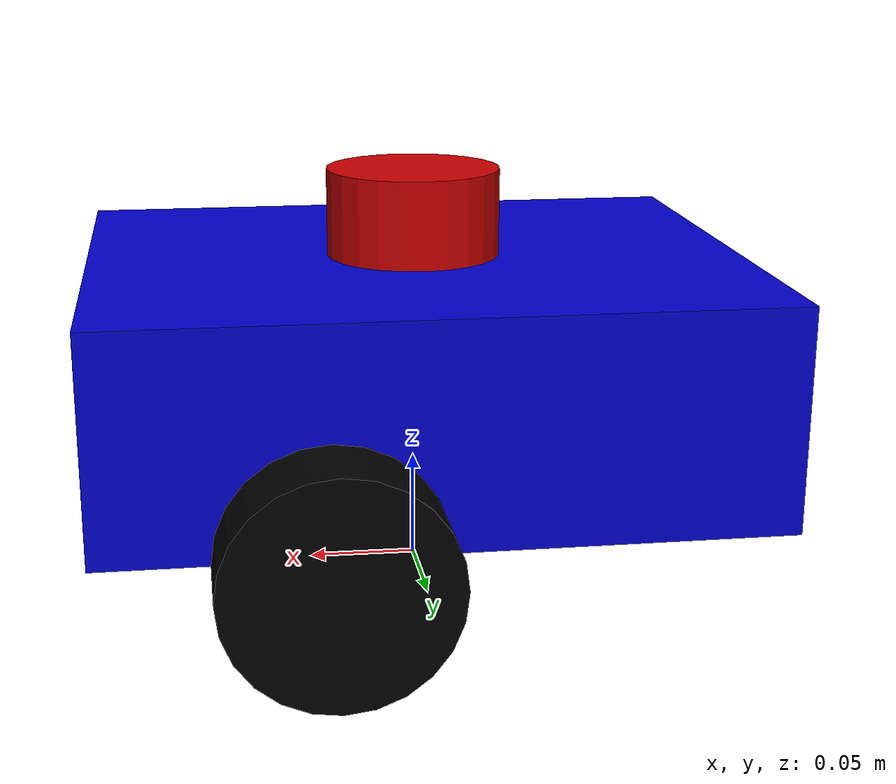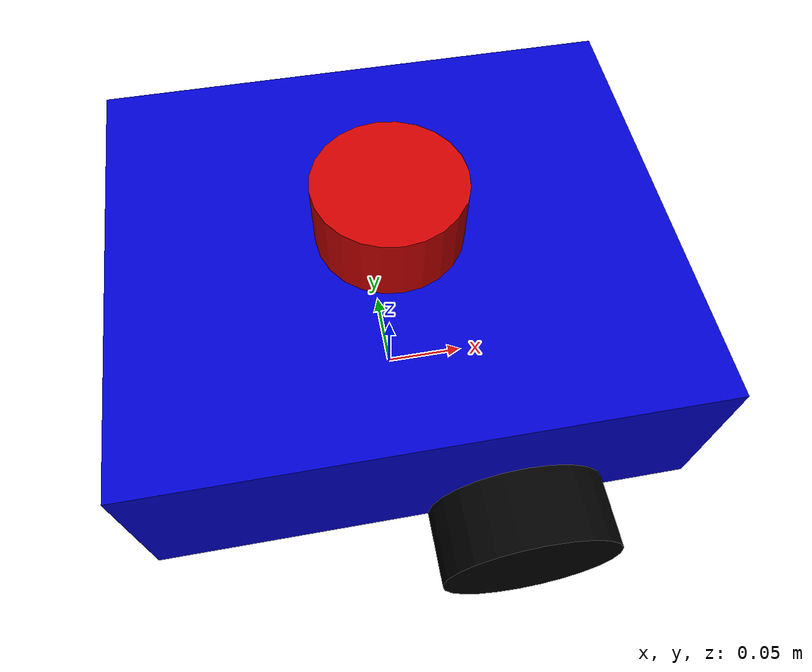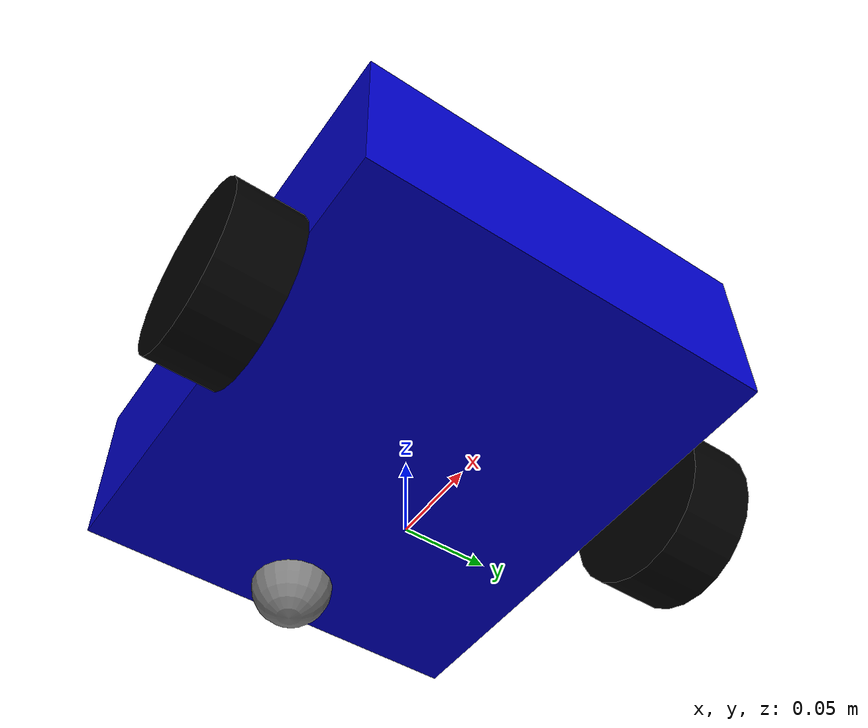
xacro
<?xml version="1.0"?>
<robot name="amr_y" xmlns:xacro="http://ros.org/wiki/xacro">

  <!-- PROPRIÉTÉS — constantes réutilisables dans tout le fichier   -->
  <!-- xacro:property = variable réutilisable partout dans le fichier -->
  <!-- Avantage : changer une valeur ici = change partout            -->
  <!-- Syntaxe : ${nom_variable} pour utiliser la valeur             -->

  <xacro:property name="chassis_length" value="0.30"/>
  <xacro:property name="chassis_width"  value="0.25"/>
  <xacro:property name="chassis_height" value="0.10"/>
  <xacro:property name="chassis_mass"   value="1.5"/>

  <xacro:property name="wheel_radius"   value="0.05"/>
  <xacro:property name="wheel_width"    value="0.04"/>
  <xacro:property name="wheel_mass"     value="0.1"/>
  <xacro:property name="wheel_offset_x" value="0.05"/>
  <xacro:property name="wheel_offset_y" value="0.145"/>
  <xacro:property name="wheel_offset_z" value="0.0"/>

  <xacro:property name="caster_radius"  value="0.025"/>
  <xacro:property name="lidar_radius"   value="0.04"/>
  <xacro:property name="lidar_height"   value="0.04"/>

  <!-- MATÉRIAUX — couleurs pour la visualisation dans RViz         -->
  <!-- rgba = Red Green Blue Alpha — valeurs de 0 à 1               -->

  <material name="blue">
    <color rgba="0.0 0.0 0.8 1.0"/>
  </material>

  <material name="black">
    <color rgba="0.0 0.0 0.0 1.0"/>
  </material>

  <material name="white">
    <color rgba="1.0 1.0 1.0 1.0"/>
  </material>

  <material name="red">
    <color rgba="0.8 0.0 0.0 1.0"/>
  </material>

  <material name="grey">
    <color rgba="0.5 0.5 0.5 1.0"/>
  </material>

  <!-- BASE FOOTPRINT — lien virtuel au niveau du sol               -->
  <!-- Convention ROS2 : tous les robots doivent avoir ce lien      -->
  <!-- Il représente la projection du robot sur le sol              -->
  <!-- Il n'a pas de géométrie physique                             -->

  <link name="base_footprint"/>

  <!-- joint type="fixed" : les deux liens ne bougent pas l'un par rapport à l'autre -->
  <joint name="base_joint" type="fixed">
    <parent link="base_footprint"/>
    <child link="base_link"/>
    <!-- On lève le robot de la hauteur du rayon des roues -->
    <origin xyz="0 0 ${wheel_radius}" rpy="0 0 0"/>
  </joint>

  <!-- BASE LINK — corps principal du robot                         -->
  <!-- Un link contient 3 éléments :                               -->
  <!--   1. visual    : ce qu'on voit dans RViz                    -->
  <!--   2. collision : forme pour la physique Gazebo              -->
  <!--   3. inertial  : masse et inertie pour la simulation        -->

  <link name="base_link">

    <!-- VISUAL : représentation visuelle dans RViz/Gazebo -->
    <visual>
      <!-- On lève de chassis_height/2 pour que le bas soit au niveau du joint -->
      <origin xyz="0 0 ${chassis_height/2}" rpy="0 0 0"/>
      <geometry>
        <!-- box : boîte rectangulaire — longueur largeur hauteur -->
        <box size="${chassis_length} ${chassis_width} ${chassis_height}"/>
      </geometry>
      <material name="blue"/>
    </visual>

    <!-- COLLISION : forme utilisée par Gazebo pour détecter les collisions -->
    <collision>
      <origin xyz="0 0 ${chassis_height/2}" rpy="0 0 0"/>
      <geometry>
        <box size="${chassis_length} ${chassis_width} ${chassis_height}"/>
      </geometry>
    </collision>

    <!-- INERTIAL : propriétés physiques pour la simulation Gazebo -->
    <!-- Formules pour une boîte solide homogène                   -->
    <inertial>
      <origin xyz="0 0 ${chassis_height/2}" rpy="0 0 0"/>
      <mass value="${chassis_mass}"/>
      <inertia
        ixx="${chassis_mass/12*(chassis_width*chassis_width + chassis_height*chassis_height)}"
        ixy="0"
        ixz="0"
        iyy="${chassis_mass/12*(chassis_length*chassis_length + chassis_height*chassis_height)}"
        iyz="0"
        izz="${chassis_mass/12*(chassis_length*chassis_length + chassis_width*chassis_width)}"/>
    </inertial>
  </link>

  <!-- MACRO ROUE — éviter de dupliquer le code pour chaque roue   -->
  <!-- params : liste des paramètres de la macro                   -->

  <xacro:macro name="wheel" params="name x y">

    <!-- type="continuous" : peut tourner sans limite (360° et plus) -->
    <joint name="${name}_joint" type="continuous">
      <parent link="base_link"/>
      <child link="${name}_link"/>
      <!-- rpy="-1.5708 0 0" : rotation de -90° autour de X        -->
      <!-- Le cylindre URDF est vertical par défaut                 -->
      <!-- On le couche pour qu'il soit horizontal comme une roue   -->
      <origin xyz="${x} ${y} ${wheel_offset_z}" rpy="-1.5708 0 0"/>
      <!-- axis : axe de rotation — Z car on a tourné le cylindre   -->
      <axis xyz="0 0 1"/>
    </joint>

    <link name="${name}_link">

      <visual>
        <origin xyz="0 0 0" rpy="0 0 0"/>
        <geometry>
          <!-- cylinder : rayon et longueur -->
          <cylinder radius="${wheel_radius}" length="${wheel_width}"/>
        </geometry>
        <material name="black"/>
      </visual>

      <collision>
        <origin xyz="0 0 0" rpy="0 0 0"/>
        <geometry>
          <cylinder radius="${wheel_radius}" length="${wheel_width}"/>
        </geometry>
      </collision>

      <!-- Formules pour un cylindre solide                         -->
      <!-- izz cylindre = m*r²/2 — inertie autour de l'axe principal -->
      <inertial>
        <origin xyz="0 0 0" rpy="0 0 0"/>
        <mass value="${wheel_mass}"/>
        <inertia
          ixx="${wheel_mass/12*(3*wheel_radius*wheel_radius + wheel_width*wheel_width)}"
          ixy="0"
          ixz="0"
          iyy="${wheel_mass/12*(3*wheel_radius*wheel_radius + wheel_width*wheel_width)}"
          iyz="0"
          izz="${wheel_mass/2*wheel_radius*wheel_radius}"/>
      </inertial>
    </link>

  </xacro:macro>

  <!-- Instancier la macro pour créer les deux roues -->
  <!-- wheel_left  : y positif = côté gauche         -->
  <!-- wheel_right : y négatif = côté droit          -->
  <xacro:wheel name="wheel_left"  x="${wheel_offset_x}" y="${wheel_offset_y}"/>
  <xacro:wheel name="wheel_right" x="${wheel_offset_x}" y="${-wheel_offset_y}"/>

  <!-- ROUE FOLLE (CASTER WHEEL) — stabilise le robot à l'arrière  -->
  <!-- type="fixed" : rigidement attachée au châssis               -->
  <!-- Sphère = friction minimale dans Gazebo                      -->

  <joint name="caster_joint" type="fixed">
    <parent link="base_link"/>
    <child link="caster_link"/>
    <!-- Position : à l'arrière du robot (x négatif)               -->
    <origin xyz="${-chassis_length/2 + caster_radius} 0 0" rpy="0 0 0"/>
  </joint>

  <link name="caster_link">

    <visual>
      <origin xyz="0 0 0" rpy="0 0 0"/>
      <geometry>
        <!-- sphere : idéale pour roue folle (friction minimale)    -->
        <sphere radius="${caster_radius}"/>
      </geometry>
      <material name="grey"/>
    </visual>

    <collision>
      <origin xyz="0 0 0" rpy="0 0 0"/>
      <geometry>
        <sphere radius="${caster_radius}"/>
      </geometry>
    </collision>

    <!-- Inertie sphère = 2/5 * m * r² pour chaque axe             -->
    <inertial>
      <mass value="0.05"/>
      <inertia
        ixx="0.0001"
        ixy="0"
        ixz="0"
        iyy="0.0001"
        iyz="0"
        izz="0.0001"/>
    </inertial>
  </link>

  <!-- LIDAR — capteur laser 360°                                   -->
  <!-- type="fixed" : ne bouge pas par rapport au robot            -->
  <!-- Positionné sur le dessus du châssis                         -->
  <!-- Le plugin Gazebo sera ajouté dans amr_gazebo                -->

  <joint name="lidar_joint" type="fixed">
    <parent link="base_link"/>
    <child link="lidar_link"/>
    <!-- z = hauteur châssis + demi-hauteur LiDAR                  -->
    <origin xyz="0 0 ${chassis_height + lidar_height/2}" rpy="0 0 0"/>
  </joint>

  <link name="lidar_link">

    <visual>
      <origin xyz="0 0 0" rpy="0 0 0"/>
      <geometry>
        <!-- cylindre rouge pour représenter le LiDAR              -->
        <cylinder radius="${lidar_radius}" length="${lidar_height}"/>
      </geometry>
      <material name="red"/>
    </visual>

    <collision>
      <origin xyz="0 0 0" rpy="0 0 0"/>
      <geometry>
        <cylinder radius="${lidar_radius}" length="${lidar_height}"/>
      </geometry>
    </collision>

    <inertial>
      <mass value="0.1"/>
      <inertia
        ixx="0.0001"
        ixy="0"
        ixz="0"
        iyy="0.0001"
        iyz="0"
        izz="0.0001"/>
    </inertial>
  </link>

  <!-- GAZEBO MATERIALS — couleurs dans Gazebo                      -->
  <!-- Gazebo utilise ses propres matériaux différents de RViz      -->

  <gazebo reference="base_link">
    <!-- Référence au lien auquel appliquer le matériau -->
    <material>Gazebo/Blue</material>
    <!-- Gazebo/Blue : matériau bleu dans Gazebo -->
  </gazebo>

  <gazebo reference="wheel_left_link">
    <material>Gazebo/Black</material>
  </gazebo>

  <gazebo reference="wheel_right_link">
    <material>Gazebo/Black</material>
  </gazebo>

  <gazebo reference="caster_link">
    <material>Gazebo/Grey</material>
    <!-- Roue folle : friction minimale pour ne pas bloquer le robot -->
    <mu1>0.001</mu1>   <!-- coefficient de friction statique -->
    <mu2>0.001</mu2>   <!-- coefficient de friction dynamique -->
  </gazebo>

  <gazebo reference="lidar_link">
    <material>Gazebo/Red</material>
  </gazebo>

  <!-- PLUGIN DIFF_DRIVE — simuler les moteurs des roues            -->
  <!-- Differential Drive = robot à deux roues motrices            -->

  <gazebo>
    <!-- gazebo sans reference = plugin global du robot -->
    <plugin name="diff_drive" filename="libgazebo_ros_diff_drive.so">
    <!-- filename : nom de la bibliothèque du plugin Gazebo         -->

      <!-- Fréquence de mise à jour du plugin en Hz -->
      <update_rate>30</update_rate>

      <!-- Noms des joints des roues gauche et droite -->
      <left_joint>wheel_left_joint</left_joint>
      <right_joint>wheel_right_joint</right_joint>

      <!-- Dimensions du robot -->
      <wheel_separation>0.29</wheel_separation>
      <!-- wheel_separation : distance entre les deux roues (2 * wheel_offset_y) -->
      <wheel_diameter>0.1</wheel_diameter>
      <!-- wheel_diameter : diamètre des roues (2 * wheel_radius) -->

      <!-- Limites de vitesse -->
      <max_wheel_torque>20</max_wheel_torque>
      <!-- max_wheel_torque : couple maximal en N.m -->
      <max_wheel_acceleration>1.0</max_wheel_acceleration>
      <!-- max_wheel_acceleration : accélération max en rad/s² -->

      <!-- Topics ROS2 -->
      <command_topic>cmd_vel</command_topic>
      <!-- command_topic : topic où le plugin lit les commandes de vitesse -->

      <!-- Publier l'odométrie -->
      <publish_odom>true</publish_odom>
      <!-- true : publier la position estimée sur /odom -->
      <publish_odom_tf>true</publish_odom_tf>
      <!-- true : publier la transformation odom → base_footprint sur /tf -->
      <publish_wheel_tf>false</publish_wheel_tf>
      <!-- false : ne pas publier les TF des roues (géré par robot_state_publisher) -->

      <!-- Noms des frames TF -->
      <odometry_frame>odom</odometry_frame>
      <!-- Frame de référence de l'odométrie -->
      <robot_base_frame>base_footprint</robot_base_frame>
      <!-- Frame de base du robot -->

    </plugin>
  </gazebo>

  <!-- PLUGIN LIDAR — simuler le capteur laser 360°                 -->

  <gazebo reference="lidar_link">
  <!-- reference="lidar_link" : attacher le plugin à ce lien       -->

    <sensor name="lidar_sensor" type="ray">
    <!-- type="ray" : capteur de type rayon laser                  -->

      <!-- Pose du capteur par rapport au lien -->
      <pose>0 0 0 0 0 0</pose>

      <!-- Activer le capteur -->
      <always_on>true</always_on>

      <!-- Fréquence de publication en Hz -->
      <update_rate>10</update_rate>

      <!-- Visualiser les rayons dans Gazebo (debug) -->
      <visualize>true</visualize>

      <ray>
        <scan>
          <horizontal>
            <!-- Nombre de rayons laser -->
            <samples>360</samples>
            <!-- samples : 360 rayons = 1 rayon par degré -->

            <!-- Résolution (1 = pas d'interpolation) -->
            <resolution>1</resolution>

            <!-- Angle minimum et maximum en radians -->
            <min_angle>-3.14159</min_angle>
            <max_angle>3.14159</max_angle>
            <!-- +π = +180° → scan 360° complet -->
          </horizontal>
        </scan>

        <range>
          <!-- Distance minimale de détection en mètres -->
          <min>0.12</min>
          <!-- Distance maximale de détection en mètres -->
          <max>10.0</max>
          <!-- Résolution de distance en mètres -->
          <resolution>0.015</resolution>
        </range>

        <noise>
          <!-- Ajouter du bruit pour simuler un vrai capteur -->
          <type>gaussian</type>
          <!-- gaussian : bruit gaussien (le plus réaliste) -->
          <mean>0.0</mean>
          <!-- mean : moyenne du bruit = 0 (pas de biais) -->
          <stddev>0.01</stddev>
          <!-- stddev : écart-type = 1cm de bruit -->
        </noise>
      </ray>

      <plugin name="lidar_plugin" filename="libgazebo_ros_ray_sensor.so">
      <!-- libgazebo_ros_ray_sensor.so : plugin ROS2 pour capteur laser -->

        <!-- Topic de publication des données laser -->
        <ros>
          <remapping>~/out:=scan</remapping>
          <!-- Remapper la sortie du plugin vers /scan -->
        </ros>

        <!-- Type de message publié -->
        <output_type>sensor_msgs/LaserScan</output_type>
        <!-- sensor_msgs/LaserScan : message standard ROS2 pour LiDAR -->

        <!-- Nom du frame du capteur -->
        <frame_name>lidar_link</frame_name>
        <!-- Doit correspondre au nom du lien dans le URDF -->

      </plugin>
    </sensor>
  </gazebo>

</robot>
